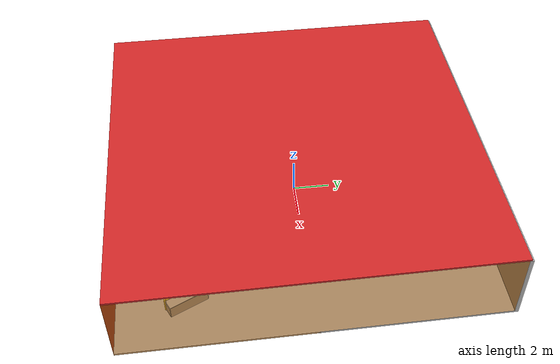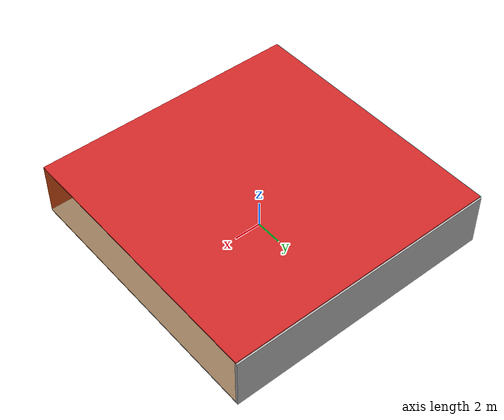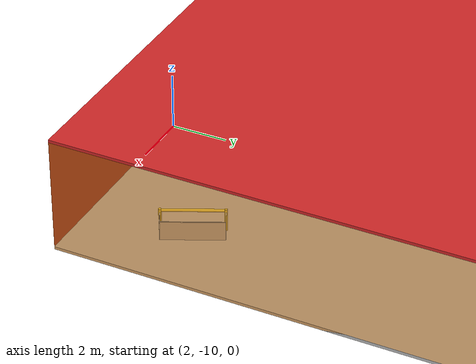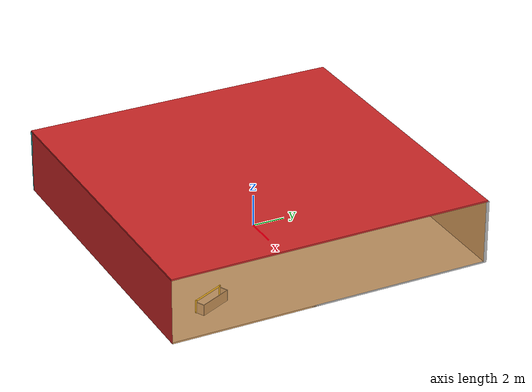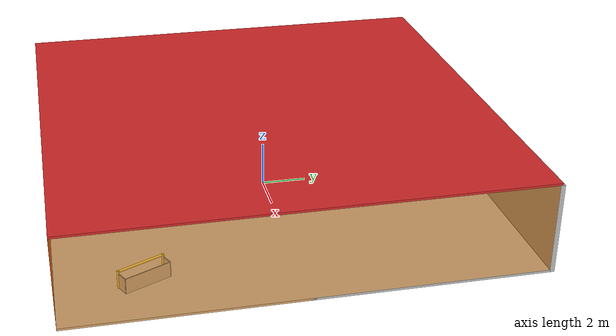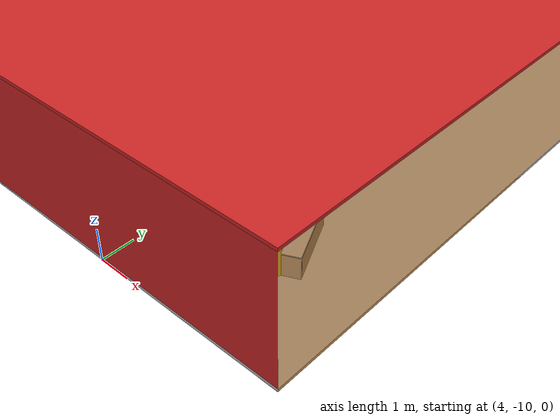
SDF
<sdf version="1.4">
 <world name="default">
  <physics type="ode">
   <max_step_size>0.001</max_step_size>
   <real_time_factor>1</real_time_factor>
   <real_time_update_rate>1000</real_time_update_rate>
   <gravity>0 0 -9.8</gravity>
  </physics>
  <scene><ambient>0.4 0.4 0.4 1</ambient><background>0.7 0.7 0.7 1</background><shadows>1</shadows></scene>
  <model name="Surrounding">
   <static>1</static>
   <link name="Ceiling">
    <collision name="Ceiling_Collision"><geometry><box><size>20 20 0.1</size></box></geometry></collision>
    <visual name="Ceiling_Visual">
     <geometry><box><size>20 20 0.1</size></box></geometry>
     <material>
      <script><uri>file://media/materials/scripts/gazebo.material</uri><name>Gazebo/RedGlow</name></script>
     </material>
    </visual>
    <pose>0 0 4.05 0 0 0</pose>
   </link>
   <link name="Wall_South">
    <collision name="Wall_South_Collision">
     <geometry><box><size>20 0 4</size></box></geometry>
     <pose>0 0 2 0 -0 0</pose>
    </collision>
    <visual name="Wall_South_Visual">
     <pose>0 0 2 0 -0 0</pose>
     <geometry><box><size>20 0 4</size></box></geometry>
     <material>
      <script><uri>file://media/materials/scripts/gazebo.material</uri><name>Gazebo/RedGlow</name></script>
     </material>
    </visual>
    <velocity_decay><linear>0</linear><angular>0</angular></velocity_decay>
    <pose>0 -10 0 0 -0 0</pose>
   </link>
   <link name="Wall_East">
    <collision name="Wall_21_Collision">
     <geometry><box><size>20 0 4</size></box></geometry>
     <pose>0 0 2 0 -0 0</pose>
    </collision>
    <visual name="Wall_21_Visual">
     <pose>0 0 2 0 -0 0</pose>
     <geometry><box><size>20 0 4</size></box></geometry>
     <material>
      <script>
       <uri>file://media/materials/scripts/gazebo.material</uri>
       <name>Gazebo/OrangeTransparent</name>
      </script>
     </material>
    </visual>
    <velocity_decay><linear>0</linear><angular>0</angular></velocity_decay>
    <pose>10 0 0 0 -0 1.5708</pose>
   </link>
   <link name="Wall_North">
    <collision name="Wall_22_Collision">
     <geometry><box><size>20 0.2 4</size></box></geometry>
     <pose>0 0 2 0 -0 0</pose>
    </collision>
    <visual name="Wall_22_Visual">
     <pose>0 0 2 0 -0 0</pose>
     <geometry><box><size>20 0.2 4</size></box></geometry>
     <material>
      <script><uri>file://media/materials/scripts/gazebo.material</uri><name>Gazebo/Pioneer2Body</name></script>
     </material>
    </visual>
    <velocity_decay><linear>0</linear><angular>0</angular></velocity_decay>
    <pose>0 10 0 0 -0 0</pose>
   </link>
   <link name="Wall_West">
    <collision name="Wall_23_Collision">
     <geometry><box><size>20 0.2 4</size></box></geometry>
     <pose>0 0 2 0 -0 0</pose>
    </collision>
    <visual name="Wall_23_Visual">
     <pose>0 0 2 0 -0 0</pose>
     <geometry><box><size>20 0.2 4</size></box></geometry>
     <material>
      <script>
       <uri>file://media/materials/scripts/gazebo.material</uri>
       <name>Gazebo/TurquoiseGlowOutline</name>
      </script>
     </material>
    </visual>
    <velocity_decay><linear>0</linear><angular>0</angular></velocity_decay>
    <pose>-10 0 0 0 0 -1.5708</pose>
   </link>
   <link name="Ground_link">
    <collision name="collision">
     <pose>0 0 .05 0 -0 0</pose>
     <geometry><box><size>20 20 0.1</size></box></geometry>
    </collision>
    <visual name="visual">
     <pose>0 0 .05 0 -0 0</pose>
     <geometry><box><size>20 20 0.1</size></box></geometry>
     <material>
      <script><uri>file://media/materials/scripts/gazebo.material</uri><name>Gazebo/PioneerBody</name></script>
     </material>
    </visual>
   </link>
   <static>1</static>
  </model>
  <spherical_coordinates>
   <surface_model>EARTH_WGS84</surface_model>
   <latitude_deg>0</latitude_deg>
   <longitude_deg>0</longitude_deg>
   <elevation>0</elevation>
   <heading_deg>0</heading_deg>
  </spherical_coordinates>
  <light name="lightball_0" type="diffuse">
   <diffuse>0.8 0.8 0.8 1</diffuse>
   <specular>0.2 0.2 0.2 1</specular>
   <attenuation>
    <range>100</range>
    <constant>0.7</constant>
    <linear>0.01</linear>
    <quadratic>0.001</quadratic>
   </attenuation>
   <direction>-0.5 0.1 -0.9</direction>
   <pose>0.852066431985 1.53232885141 2.52178836725 0 0 0</pose>
  </light>
  <light name="lightball_1" type="diffuse">
   <diffuse>0.8 0.8 0.8 1</diffuse>
   <specular>0.2 0.2 0.2 1</specular>
   <attenuation>
    <range>100</range>
    <constant>0.7</constant>
    <linear>0.01</linear>
    <quadratic>0.001</quadratic>
   </attenuation>
   <direction>-0.5 0.1 -0.9</direction>
   <pose>9.53933439834 6.2841003458 3.74811813186 0 0 0</pose>
  </light>
  <light name="lightball_2" type="diffuse">
   <diffuse>0.8 0.8 0.8 1</diffuse>
   <specular>0.2 0.2 0.2 1</specular>
   <attenuation>
    <range>100</range>
    <constant>0.7</constant>
    <linear>0.01</linear>
    <quadratic>0.001</quadratic>
   </attenuation>
   <direction>-0.5 0.1 -0.9</direction>
   <pose>8.01917388897 0.872562173331 3.2777954776 0 0 0</pose>
  </light>
  <light name="lightball_3" type="diffuse">
   <diffuse>0.8 0.8 0.8 1</diffuse>
   <specular>0.2 0.2 0.2 1</specular>
   <attenuation>
    <range>100</range>
    <constant>0.7</constant>
    <linear>0.01</linear>
    <quadratic>0.001</quadratic>
   </attenuation>
   <direction>-0.5 0.1 -0.9</direction>
   <pose>-0.459793235207 -1.58349280993 1.4541733965 0 0 0</pose>
  </light>
  <light name="lightball_4" type="diffuse">
   <diffuse>0.8 0.8 0.8 1</diffuse>
   <specular>0.2 0.2 0.2 1</specular>
   <attenuation>
    <range>100</range>
    <constant>0.7</constant>
    <linear>0.01</linear>
    <quadratic>0.001</quadratic>
   </attenuation>
   <direction>-0.5 0.1 -0.9</direction>
   <pose>6.0652642766 -3.42918415788 3.10741987976 0 0 0</pose>
  </light>
  <light name="lightball_5" type="diffuse">
   <diffuse>0.8 0.8 0.8 1</diffuse>
   <specular>0.2 0.2 0.2 1</specular>
   <attenuation>
    <range>100</range>
    <constant>0.7</constant>
    <linear>0.01</linear>
    <quadratic>0.001</quadratic>
   </attenuation>
   <direction>-0.5 0.1 -0.9</direction>
   <pose>7.90813588078 -6.47239380734 1.01298467087 0 0 0</pose>
  </light>
  <light name="lightball_6" type="diffuse">
   <diffuse>0.8 0.8 0.8 1</diffuse>
   <specular>0.2 0.2 0.2 1</specular>
   <attenuation>
    <range>100</range>
    <constant>0.7</constant>
    <linear>0.01</linear>
    <quadratic>0.001</quadratic>
   </attenuation>
   <direction>-0.5 0.1 -0.9</direction>
   <pose>-9.54430987958 -0.571153111632 2.16191499718 0 0 0</pose>
  </light>
  <light name="lightball_7" type="diffuse">
   <diffuse>0.8 0.8 0.8 1</diffuse>
   <specular>0.2 0.2 0.2 1</specular>
   <attenuation>
    <range>100</range>
    <constant>0.7</constant>
    <linear>0.01</linear>
    <quadratic>0.001</quadratic>
   </attenuation>
   <direction>-0.5 0.1 -0.9</direction>
   <pose>1.24256643599 -4.65909363603 3.41629720031 0 0 0</pose>
  </light>
  <light name="lightball_8" type="diffuse">
   <diffuse>0.8 0.8 0.8 1</diffuse>
   <specular>0.2 0.2 0.2 1</specular>
   <attenuation>
    <range>100</range>
    <constant>0.7</constant>
    <linear>0.01</linear>
    <quadratic>0.001</quadratic>
   </attenuation>
   <direction>-0.5 0.1 -0.9</direction>
   <pose>2.18023619479 -0.58992318225 3.73385671504 0 0 0</pose>
  </light>
  <light name="lightball_9" type="diffuse">
   <diffuse>0.8 0.8 0.8 1</diffuse>
   <specular>0.2 0.2 0.2 1</specular>
   <attenuation>
    <range>100</range>
    <constant>0.7</constant>
    <linear>0.01</linear>
    <quadratic>0.001</quadratic>
   </attenuation>
   <direction>-0.5 0.1 -0.9</direction>
   <pose>4.85567084556 9.84849209324 2.56943934904 0 0 0</pose>
  </light>
  <include>
   <uri>model://textured_shapes</uri>
   <pose>-5.29230787998 7.20854469806 0 0 0 1.59244288076</pose>
  </include>
  <include><uri>model://cabinet</uri><pose>-2.36050189422 -1.79681475467 0 0 0 1.13462923675</pose></include>
  <include>
   <uri>model://robocup_3Dsim_goal</uri>
   <pose>7.24266528577 -6.5107262928 0 0 0 0.444712048423</pose>
  </include>
 </world>
</sdf>

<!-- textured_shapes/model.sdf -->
<sdf version="1.6">
  <model name="textured_shapes">
    <pose>0 0 0.5 0 0 0</pose>
    <link name="box">
      <pose>0 -1.5 0 0 0 0</pose>
      <collision name="collision">
        <geometry>
          <box>
            <size>1 1 1</size>
          </box>
        </geometry>
      </collision>
      <visual name="visual">
        <geometry>
          <box>
            <size>1 1 1</size>
          </box>
        </geometry>
        <material>
          <script>
            <uri>model://../model_source/models/textured_shapes/materials/scripts</uri>
            <uri>model://../model_source/models/textured_shapes/materials/textures</uri>
            <name>TexturedShape/Squares</name>
          </script>
        </material>
      </visual>
    </link>
    <link name="sphere">
      <collision name="collision">
        <geometry>
          <sphere>
            <radius>0.5</radius>
          </sphere>
        </geometry>
      </collision>
      <visual name="visual">
        <geometry>
          <sphere>
            <radius>0.5</radius>
          </sphere>
        </geometry>
        <material>
          <script>
            <uri>model://../model_source/models/textured_shapes/materials/scripts</uri>
            <uri>model://../model_source/models/textured_shapes/materials/textures</uri>
            <name>TexturedShape/Squares</name>
          </script>
        </material>
      </visual>
    </link>
    <link name="cylinder">
      <pose>0 1.5 0 0 0 0</pose>
      <collision name="collision">
        <geometry>
          <cylinder>
            <radius>0.5</radius>
            <length>1</length>
          </cylinder>
        </geometry>
      </collision>
      <visual name="visual">
        <geometry>
          <cylinder>
            <radius>0.5</radius>
            <length>1</length>
          </cylinder>
        </geometry>
        <material>
          <script>
            <uri>model://../model_source/models/textured_shapes/materials/scripts</uri>
            <uri>model://../model_source/models/textured_shapes/materials/textures</uri>
            <name>TexturedShape/Squares</name>
          </script>
        </material>
      </visual>
    </link>
  </model>
</sdf>

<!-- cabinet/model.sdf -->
<sdf version="1.5">
  <model name="cabinet">
    <static>true</static>
    <link name="cabinet_bottom_plate">
      <inertial>
        <pose>0 0 -1 0 0 0</pose>
        <inertia>
          <ixx>2.050000</ixx>
          <ixy>0</ixy>
          <ixz>0</ixz>
          <iyy>2.050000</iyy>
          <iyz>0</iyz>
          <izz>2.050000</izz>
        </inertia>
        <mass>25.000000</mass>
      </inertial>
      <collision name="cabinet_bottom_plate_geom">
        <pose>0 0 0.010000 0 0 0</pose>
        <geometry>
          <box>
            <size>0.450000 0.450000 0.020000</size>
          </box>
        </geometry>
      </collision>
      <visual name="cabinet_bottom_plate_geom_visual">
        <pose>0 0 0.010000 0 0 0</pose>
        <geometry>
          <box>
            <size>0.450000 0.450000 0.020000</size>
          </box>
        </geometry>
        <material>
          <script>
            <uri>model://media/materials/scripts/gazebo.material</uri>
            <name>Gazebo/Wood</name>
          </script>
        </material>
      </visual>
      <collision name="cabinet_bottom_plate_geom_cabinet_back_plate">
        <pose>0.235000 0 0.510000 0 0 0</pose>
        <geometry>
          <box>
            <size>0.020000 0.450000 1.020000</size>
          </box>
        </geometry>
      </collision>
      <visual name="cabinet_bottom_plate_geom_cabinet_back_plate_visual">
        <pose>0.235000 0 0.510000 0 0 0</pose>
        <geometry>
          <box>
            <size>0.020000 0.450000 1.020000</size>
          </box>
        </geometry>
        <material>
          <script>
            <uri>model://media/materials/scripts/gazebo.material</uri>
            <name>Gazebo/Wood</name>
          </script>
        </material>
      </visual>
      <collision name="cabinet_bottom_plate_geom_cabinet_left_plate">
        <pose>0 0.235000 0.510000 0 0 0</pose>
        <geometry>
          <box>
            <size>0.450000 0.020000 1.020000</size>
          </box>
        </geometry>
      </collision>
      <visual name="cabinet_bottom_plate_geom_cabinet_left_plate_visual">
        <pose>0 0.235000 0.510000 0 0 0</pose>
        <geometry>
          <box>
            <size>0.450000 0.020000 1.020000</size>
          </box>
        </geometry>
        <material>
          <script>
            <uri>model://media/materials/scripts/gazebo.material</uri>
            <name>Gazebo/Wood</name>
          </script>
        </material>
      </visual>
      <collision name="cabinet_bottom_plate_geom_cabinet_middle_plate">
        <pose>0 0 0.510000 0 0 0</pose>
        <geometry>
          <box>
            <size>0.450000 0.450000 0.020000</size>
          </box>
        </geometry>
      </collision>
      <visual name="cabinet_bottom_plate_geom_cabinet_middle_plate_visual">
        <pose>0 0 0.510000 0 0 0</pose>
        <geometry>
          <box>
            <size>0.450000 0.450000 0.020000</size>
          </box>
        </geometry>
        <material>
          <script>
            <uri>model://media/materials/scripts/gazebo.material</uri>
            <name>Gazebo/Wood</name>
          </script>
        </material>
      </visual>
      <collision name="cabinet_bottom_plate_geom_cabinet_right_plate">
        <pose>0 -0.235000 0.510000 0 0 0</pose>
        <geometry>
          <box>
            <size>0.450000 0.020000 1.020000</size>
          </box>
        </geometry>
      </collision>
      <visual name="cabinet_bottom_plate_geom_cabinet_right_plate_visual">
        <pose>0 -0.235000 0.510000 0 0 0</pose>
        <geometry>
          <box>
            <size>0.450000 0.020000 1.020000</size>
          </box>
        </geometry>
        <material>
          <script>
            <uri>model://media/materials/scripts/gazebo.material</uri>
            <name>Gazebo/Wood</name>
          </script>
        </material>
      </visual>
      <collision name="cabinet_bottom_plate_geom_cabinet_top_plate">
        <pose>0 0 1.010000 0 0 0</pose>
        <geometry>
          <box>
            <size>0.450000 0.450000 0.020000</size>
          </box>
        </geometry>
      </collision>
      <visual name="cabinet_bottom_plate_geom_cabinet_top_plate_visual">
        <pose>0 0 1.010000 0 0 0</pose>
        <geometry>
          <box>
            <size>0.450000 0.450000 0.020000</size>
          </box>
        </geometry>
        <material>
          <script>
            <uri>model://media/materials/scripts/gazebo.material</uri>
            <name>Gazebo/Wood</name>
          </script>
        </material>
      </visual>
    </link>
  </model>
</sdf>

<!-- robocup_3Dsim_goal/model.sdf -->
<sdf version="1.5">
  <model name="robocup_3d_goal">
    <static>true</static>
    <link name="left_post">
      <pose>0 1.05 0.45 0 0 0</pose>
      <collision name="collision">
        <geometry>
          <cylinder>
            <radius>0.05</radius>
            <length>0.9</length>
          </cylinder>
        </geometry>
      </collision>
      <visual name="visual">
        <geometry>
          <cylinder>
            <radius>0.05</radius>
            <length>0.9</length>
          </cylinder>
        </geometry>
        <material>
          <script>
            <uri>file://media/materials/scripts/gazebo.material</uri>
            <name>Gazebo/ZincYellow</name>
          </script>
        </material>
      </visual>
    </link>
    <link name="left_support_horiz_lower">
      <pose>0.30 1.05 0.01 0 0 0</pose>
      <collision name="collision">
        <geometry>
          <box>
            <size>0.50 0.02 0.02</size>
          </box>
        </geometry>
      </collision>
      <visual name="visual">
        <geometry>
          <box>
            <size>0.50 0.02 0.02</size>
          </box>
        </geometry>
        <material>
          <script>
            <uri>file://media/materials/scripts/gazebo.material</uri>
            <name>Gazebo/White</name>
          </script>
        </material>
      </visual>
    </link>
    <link name="left_support_horiz_upper">
      <pose>0.30 1.05 0.79 0 0 0</pose>
      <collision name="collision">
        <geometry>
          <box>
            <size>0.50 0.02 0.02</size>
          </box>
        </geometry>
      </collision>
      <visual name="visual">
        <geometry>
          <box>
            <size>0.50 0.02 0.02</size>
          </box>
        </geometry>
        <material>
          <script>
            <uri>file://media/materials/scripts/gazebo.material</uri>
            <name>Gazebo/White</name>
          </script>
        </material>
      </visual>
    </link>
    <link name="left_support_vertical">
      <pose>0.56 1.05 0.4 0 1.5708 0</pose>
      <collision name="collision">
        <geometry>
          <box>
            <size>0.80 0.02 0.02</size>
          </box>
        </geometry>
      </collision>
      <visual name="visual">
        <geometry>
          <box>
            <size>0.80 0.02 0.02</size>
          </box>
        </geometry>
        <material>
          <script>
            <uri>file://media/materials/scripts/gazebo.material</uri>
            <name>Gazebo/White</name>
          </script>
        </material>
      </visual>
    </link>
    <link name="right_support_horiz_lower">
      <pose>0.30 -1.05 0.01 0 0 0</pose>
      <collision name="collision">
        <geometry>
          <box>
            <size>0.50 0.02 0.02</size>
          </box>
        </geometry>
      </collision>
      <visual name="visual">
        <geometry>
          <box>
            <size>0.50 0.02 0.02</size>
          </box>
        </geometry>
        <material>
          <script>
            <uri>file://media/materials/scripts/gazebo.material</uri>
            <name>Gazebo/White</name>
          </script>
        </material>
      </visual>
    </link>
    <link name="right_support_horiz_upper">
      <pose>0.30 -1.05 0.79 0 0 0</pose>
      <collision name="collision">
        <geometry>
          <box>
            <size>0.50 0.02 0.02</size>
          </box>
        </geometry>
      </collision>
      <visual name="visual">
        <geometry>
          <box>
            <size>0.50 0.02 0.02</size>
          </box>
        </geometry>
        <material>
          <script>
            <uri>file://media/materials/scripts/gazebo.material</uri>
            <name>Gazebo/White</name>
          </script>
        </material>
      </visual>
    </link>
    <link name="right_support_vertical">
      <pose>0.56 -1.05 0.4 0 1.5708 0</pose>
      <collision name="collision">
        <geometry>
          <box>
            <size>0.80 0.02 0.02</size>
          </box>
        </geometry>
      </collision>
      <visual name="visual">
        <geometry>
          <box>
            <size>0.80 0.02 0.02</size>
          </box>
        </geometry>
        <material>
          <script>
            <uri>file://media/materials/scripts/gazebo.material</uri>
            <name>Gazebo/White</name>
          </script>
        </material>
      </visual>
    </link>
    <link name="center_support_horiz_lower">
      <pose>0.56 0 0.01 0 1.5708 0</pose>
      <collision name="collision">
        <geometry>
          <box>
            <size>0.02 2.08 0.02</size>
          </box>
        </geometry>
      </collision>
      <visual name="visual">
        <geometry>
          <box>
            <size>0.02 2.08 0.02</size>
          </box>
        </geometry>
        <material>
          <script>
            <uri>file://media/materials/scripts/gazebo.material</uri>
            <name>Gazebo/White</name>
          </script>
        </material>
      </visual>
    </link>
    <link name="center_support_horiz_upper">
      <pose>0.56 0 0.79 0 1.5708 0</pose>
      <collision name="collision">
        <geometry>
          <box>
            <size>0.02 2.08 0.02</size>
          </box>
        </geometry>
      </collision>
      <visual name="visual">
        <geometry>
          <box>
            <size>0.02 2.08 0.02</size>
          </box>
        </geometry>
        <material>
          <script>
            <uri>file://media/materials/scripts/gazebo.material</uri>
            <name>Gazebo/White</name>
          </script>
        </material>
      </visual>
    </link>
    <link name="right_post">
      <pose>0 -1.05 0.45 0 0 0</pose>
      <collision name="collision">
        <geometry>
          <cylinder>
            <radius>0.05</radius>
            <length>0.9</length>
          </cylinder>
        </geometry>
      </collision>
      <visual name="visual">
        <geometry>
          <cylinder>
            <radius>0.05</radius>
            <length>0.9</length>
          </cylinder>
        </geometry>
        <material>
          <script>
            <uri>file://media/materials/scripts/gazebo.material</uri>
            <name>Gazebo/ZincYellow</name>
          </script>
        </material>
      </visual>
    </link>
    <link name="crossbar">
      <pose>0 0 0.85 1.57 1.57 0</pose>
      <collision name="collision">
        <geometry>
          <cylinder>
            <radius>0.05</radius>
            <length>2.0</length>
          </cylinder>
        </geometry>
      </collision>
      <visual name="visual">
        <geometry>
          <cylinder>
            <radius>0.05</radius>
            <length>2.0</length>
          </cylinder>
        </geometry>
        <material>
          <script>
            <uri>file://media/materials/scripts/gazebo.material</uri>
            <name>Gazebo/ZincYellow</name>
          </script>
        </material>
      </visual>
    </link>
    <link name="center_net">
      <pose>0.56 0 0.40 0 0 0</pose>
      <collision name="collision">
        <geometry>
          <box>
            <size>0.01 2.1 0.80</size>
          </box>
        </geometry>
      </collision>
      <visual name="visual">
        <geometry>
          <box>
            <size>0.01 2.1 0.80</size>
          </box>
        </geometry>
        <material>
          <script>
            <uri>model://../model_source/models/robocup09_spl_field/materials/scripts/</uri>
            <uri>model://../model_source/models/robocup09_spl_field/materials/textures/</uri>
            <name>RoboCup/Net</name>
          </script>
        </material>
      </visual>
    </link>
    <link name="left_net">
      <pose>0.30 1.05 0.40 0 0 0</pose>
      <collision name="collision">
        <geometry>
          <box>
            <size>0.50 0.01 0.76</size>
          </box>
        </geometry>
      </collision>
      <visual name="visual">
        <geometry>
          <box>
            <size>0.50 0.01 0.76</size>
          </box>
        </geometry>
        <material>
          <script>
            <uri>model://../model_source/models/robocup09_spl_field/materials/scripts/</uri>
            <uri>model://../model_source/models/robocup09_spl_field/materials/textures/</uri>
            <name>RoboCup/Net</name>
          </script>
        </material>
      </visual>
    </link>
    <link name="right_net">
      <pose>0.30 -1.05 0.40 0 0 0</pose>
      <collision name="collision">
        <geometry>
          <box>
            <size>0.50 0.01 0.76</size>
          </box>
        </geometry>
      </collision>
      <visual name="visual">
        <geometry>
          <box>
            <size>0.50 0.01 0.76</size>
          </box>
        </geometry>
        <material>
          <script>
            <uri>model://../model_source/models/robocup09_spl_field/materials/scripts/</uri>
            <uri>model://../model_source/models/robocup09_spl_field/materials/textures/</uri>
            <name>RoboCup/Net</name>
          </script>
        </material>
      </visual>
    </link>
  </model>
</sdf>
